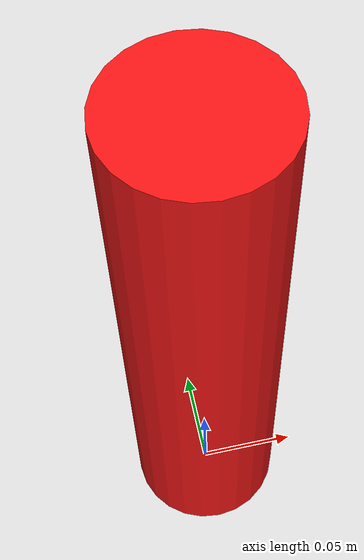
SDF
<?xml version="1.0" encoding="UTF-8"?>
<sdf version="1.9">
  <model name="target_branch">

    <!-- Step10 detachable cutting target: RED OUTER SEGMENT ONLY -->
    <!-- Model frame stays at the cut plane / seam (local z = 0). -->
    <!-- The red cylinder extends from z = 0 to z = +0.30 m.      -->

    <static>false</static>
    <self_collide>false</self_collide>

    <link name="target_branch_link">

      <inertial>
        <pose>0 0 0.15 0 0 0</pose>
        <mass>0.9</mass>
        <inertia>
          <ixx>0.00698</ixx>
          <iyy>0.00698</iyy>
          <izz>0.00065</izz>
        </inertia>
      </inertial>

      <collision name="target_branch_outer_collision">
        <pose>0 0 0.15 0 0 0</pose>
        <geometry>
          <cylinder>
            <radius>0.038</radius>
            <length>0.30</length>
          </cylinder>
        </geometry>
      </collision>

      <visual name="target_branch_outer_visual">
        <pose>0 0 0.15 0 0 0</pose>
        <geometry>
          <cylinder>
            <radius>0.038</radius>
            <length>0.30</length>
          </cylinder>
        </geometry>
        <material>
          <ambient>0.70 0.05 0.05 1</ambient>
          <diffuse>0.95 0.08 0.08 1</diffuse>
          <specular>0.15 0.15 0.15 1</specular>
        </material>
      </visual>

    </link>

  </model>
</sdf>
